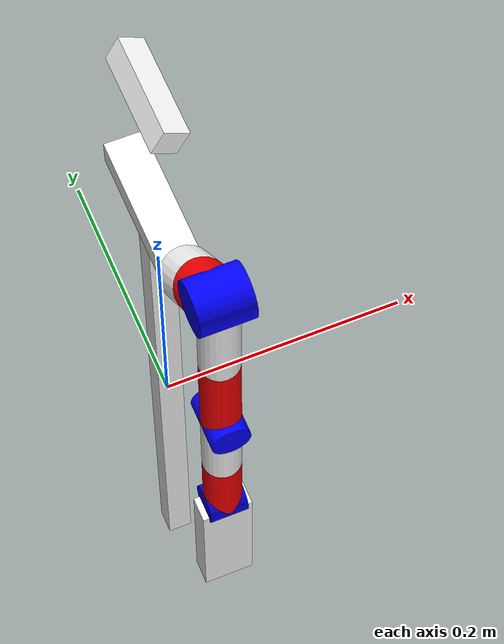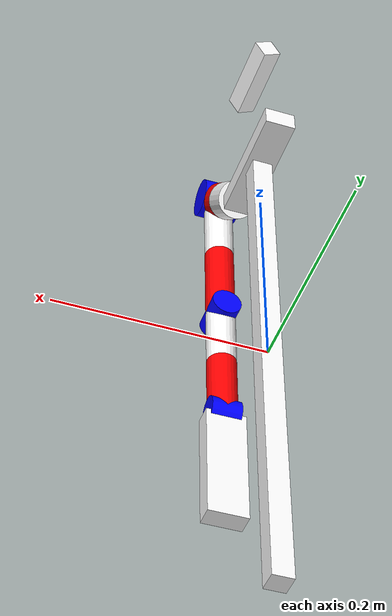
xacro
<?xml version="1.0"?>

<robot name="rx1" xmlns:xacro="http://ros.org/wiki/xacro">
    <xacro:property name="pi" value="3.1415" />
    <xacro:property name="motor_torque" value="50.0"/>
    <xacro:property name="motor_vec" value="15"/>

    <material name="red">
        <color rgba="1 0 0 1"/>
    </material>

    <material name="white">
        <color rgba="1 1 1 1"/>
    </material>

    <material name="blue">
        <color rgba="0 0 1 1"/>
    </material>

    <xacro:macro name="default_inertial" params="mass">
        <inertial>
            <mass value="${mass}" />
            <inertia ixx="1.0" ixy="0.0" ixz="0.0" iyy="1.0" iyz="0.0" izz="1.0" />
        </inertial>
    </xacro:macro>

    <link name="base_link">
        <inertial>
            <mass value="10.0" />
            <inertia ixx="0.1" ixy="0.0" ixz="0.0" iyy="0.04" iyz="0.0" izz="0.2" />
            <!--inertia ixx="1" ixy="0.0" ixz="0.0" iyy="1" iyz="0.0" izz="1" /-->
        </inertial>

        <visual>
            <geometry>
                <box size="0.02 0.02 0.5" />
            </geometry>
            <material name="white"/>
        </visual>
        <collision>
            <geometry>
                <box size="0.02 0.02 0.5" />
            </geometry>
        </collision>
    </link>

    <link name="camera_link">
        <inertial>
            <mass value="0.05" />
            <inertia ixx="4.16666667e-06" ixy="0.0" ixz="0.0" iyy="6.6666666667e-6" iyz="0.0" izz="04.16666667e-06" />
        </inertial>
        <visual>
            <geometry>
                <box size="0.02 0.08 0.02" />
            </geometry>
            <origin rpy="0 0 0" xyz="0 0 0"/>
            <material name="white"/>
        </visual>
        <collision>
            <geometry>
                <box size="0.03 0.12 0.02" />
            </geometry>
            <origin rpy="0 0 0" xyz="0 0 0"/>
        </collision>
    </link>
    <joint name="base2camera_joint" type="fixed">
        <origin xyz="0 0 0.40" rpy="0 0.5 0" />
        <parent link="base_link" />
        <child link="camera_link" />
    </joint>

    <link name="camera_color_optical_frame">
        <visual>
            <geometry>
                <box size="0.01 0.01 0.01" />
            </geometry>
            <origin rpy="0 0 0" xyz="0 0 0"/>
            <material name="white"/>
        </visual>
    </link>
    <joint name="camera2camera_joint" type="fixed">
        <origin xyz="0 0 0" rpy="-1.57 0 -1.57" />
        <parent link="camera_link" />
        <child link="camera_color_optical_frame" />
    </joint>

    <link name="torso_link">
        <inertial>
            <mass value="0.05" />
            <inertia ixx="4.16666667e-06" ixy="0.0" ixz="0.0" iyy="6.6666666667e-6" iyz="0.0" izz="04.16666667e-06" />
        </inertial>
        <visual>
            <geometry>
                <box size="0.03 0.12 0.02" />
            </geometry>
            <origin rpy="0 0 0" xyz="0 0 0"/>
            <material name="white"/>
        </visual>
        <collision>
            <geometry>
                <box size="0.03 0.12 0.02" />
            </geometry>
            <origin rpy="0 0 0" xyz="0 0 0"/>
        </collision>
    </link>
    <joint name="base2torso_joint" type="fixed">
        <origin xyz="0 0 0.26" rpy="0 0 0" />
        <parent link="base_link" />
        <child link="torso_link" />
    </joint>

    <link name="chest_link">
        <inertial>
            <mass value="0.05" />
            <inertia ixx="4.16666667e-06" ixy="0.0" ixz="0.0" iyy="6.6666666667e-6" iyz="0.0" izz="04.16666667e-06" />
        </inertial>

        <visual>
            <geometry>
                <cylinder length="0.04" radius="0.02" />
            </geometry>
            <origin rpy="0 0 0" xyz="0 0 0.02"/>
            <material name="white"/>
        </visual>
        <collision>
            <geometry>
                <cylinder length="0.04" radius="0.02" />
            </geometry>
            <origin rpy="0 0 0" xyz="0 0 0.02"/>
        </collision>
    </link>
    <joint name="torso2chest_joint" type="fixed">
        <origin xyz="0 -0.06 0.01" rpy="${0.25*pi} 0 0" />
        <parent link="torso_link" />
        <child link="chest_link" />
    </joint>

    <link name="shoul_link">
        <visual>
            <geometry>
                <cylinder length="0.04" radius="0.02" />
            </geometry>
            <origin rpy="0 0 0" xyz="0 0 0.02"/>
            <material name="red"/>
        </visual>
        <collision>
            <geometry>
                <cylinder length="0.04" radius="0.02" />
            </geometry>
            <origin rpy="0 0 0" xyz="0 0 0.02"/>
        </collision>
    </link>
    <joint name="chest2shoul_joint" type="revolute">
        <axis xyz="0 0 1" />
        <limit effort="${motor_torque}" lower="${-0.5*pi}" upper="${0.5*pi}" velocity="${motor_vec}"/>
        <origin xyz="0 0 0.04" rpy="0 0 0" />
        <parent link="chest_link" />
        <child link="shoul_link" />
    </joint>

    <link name="shoulrot_link">
        <visual>
            <geometry>
                <cylinder length="0.04" radius="0.02" />
            </geometry>
            <origin rpy="0 ${0.5*pi} 0" xyz="0 0 0"/>
            <material name="blue"/>
        </visual>
        <collision>
            <geometry>
                <cylinder length="0.04" radius="0.02" />
            </geometry>
            <origin rpy="0 ${0.5*pi} 0" xyz="0 0 0"/>
        </collision>
    </link>
    <joint name="shoul2shoulrot_joint" type="revolute">
        <axis xyz="1 0 0" />
        <limit effort="${motor_torque}" lower="${-0.5*pi}" upper="${0.5*pi}" velocity="${motor_vec}"/>
        <origin xyz="0 0 0.04" rpy="${-0.25*pi} 0 0" />
        <parent link="shoul_link" />
        <child link="shoulrot_link" />
    </joint>

    <link name="arm_link">
        <visual>
            <geometry>
                <cylinder length="0.085" radius="0.015" />
            </geometry>
            <origin rpy="0 0 0" xyz="0 0 0"/>
            <material name="white"/>
        </visual>
        <collision>
            <geometry>
                <cylinder length="0.085" radius="0.015" />
            </geometry>
            <origin rpy="0 0 0" xyz="0 0 0"/>
        </collision>
    </link>
    <joint name="shoulrot2arm_joint" type="fixed">
        <origin xyz="0 0 -0.0425" rpy="0 0 0" />
        <parent link="shoulrot_link" />
        <child link="arm_link" />
    </joint>

    <link name="armrot_link">
        <visual>
            <geometry>
                <cylinder length="0.085" radius="0.015" />
            </geometry>
            <origin rpy="0 0 0" xyz="0 0 -0.0425"/>
            <material name="red"/>
        </visual>
        <collision>
            <geometry>
                <cylinder length="0.085" radius="0.015" />
            </geometry>
            <origin rpy="0 0 0" xyz="0 0 -0.0425"/>
        </collision>
    </link>
    <joint name="arm2armrot_joint" type="revolute">
        <axis xyz="0 0 1" />
        <limit effort="${motor_torque}" lower="${-0.5*pi}" upper="${0.5*pi}" velocity="${motor_vec}"/>
        <origin xyz="0 0 -0.0425" rpy="0 0 0" />
        <parent link="arm_link" />
        <child link="armrot_link" />
    </joint>

    <link name="elbow_link">
        <visual>
            <geometry>
                <cylinder length="0.04" radius="0.015" />
            </geometry>
            <origin rpy="0 ${0.5*pi} -${0.5*pi}" xyz="0 0 0"/>
            <material name="blue"/>
        </visual>
        <collision>
            <geometry>
                <cylinder length="0.085" radius="0.015" />
            </geometry>
            <origin rpy="0 ${0.5*pi} -${0.5*pi}" xyz="0 0 0"/>
        </collision>
    </link>
    <joint name="armrot2elbow_joint" type="revolute">
        <axis xyz="0 1 0" />
        <limit effort="${motor_torque}" lower="${-0.5*pi}" upper="${0.5*pi}" velocity="${motor_vec}"/>
        <origin xyz="0 0 -0.085" rpy="0 0 0" />
        <parent link="armrot_link" />
        <child link="elbow_link" />
    </joint>

     <link name="forearm_link">
        <visual>
            <geometry>
                <cylinder length="0.066" radius="0.015" />
            </geometry>
            <origin rpy="0 0 0" xyz="0 0 0"/>
            <material name="white"/>
        </visual>
        <collision>
            <geometry>
                <cylinder length="0.066" radius="0.015" />
            </geometry>
            <origin rpy="0 0 0" xyz="0 0 0"/>
        </collision>
    </link>
    <joint name="elbow2forearm_joint" type="fixed">
        <origin xyz="0 0 -0.033" rpy="0 0 0" />
        <parent link="elbow_link" />
        <child link="forearm_link" />
    </joint>

    <link name="forearmrot_link">
        <visual>
            <geometry>
                <cylinder length="0.066" radius="0.015" />
            </geometry>
            <origin rpy="0 0 0" xyz="0 0 -0.033"/>
            <material name="red"/>
        </visual>
        <collision>
            <geometry>
                <cylinder length="0.066" radius="0.015" />
            </geometry>
            <origin rpy="0 0 0" xyz="0 0 -0.033"/>
        </collision>
    </link>
    <joint name="forearm2forearmrot_joint" type="revolute">
        <axis xyz="0 0 1" />
        <limit effort="${motor_torque}" lower="${-0.5*pi}" upper="${0.5*pi}" velocity="${motor_vec}"/>
        <origin xyz="0 0 -0.033" rpy="0 0 0" />
        <parent link="forearm_link" />
        <child link="forearmrot_link" />
    </joint>

    <link name="wrist_link">
        <visual>
            <geometry>
                <cylinder length="0.03" radius="0.015" />
            </geometry>
            <origin rpy="0 ${0.5*pi} 0" xyz="0 0 0"/>
            <material name="blue"/>
        </visual>
        <collision>
            <geometry>
                <cylinder length="0.03" radius="0.01" />
            </geometry>
            <origin rpy="0 ${0.5*pi} 0" xyz="0 0 0"/>
        </collision>
    </link>
    <joint name="forearmrot2wrist_joint" type="revolute">
        <axis xyz="1 0 0" />
        <limit effort="${motor_torque}" lower="${-0.5*pi}" upper="${0.5*pi}" velocity="${motor_vec}"/>
        <origin xyz="0 0 -0.066" rpy="0 0 0" />
        <parent link="forearmrot_link" />
        <child link="wrist_link" />
    </joint>

    <link name="hand_link">
        <visual>
            <geometry>
                <box size="0.04 0.02 0.12" />
            </geometry>
            <origin rpy="0 0 0" xyz="0 0 0"/>
            <material name="white"/>
        </visual>
        <collision>
            <geometry>
                <box size="0.04 0.02 0.12" />
            </geometry>
            <origin rpy="0 0 0" xyz="0 0 0"/>
        </collision>
    </link>
    <joint name="wrist2hand_joint" type="fixed">
        <origin xyz="0 0 -0.066" rpy="0 0 0" />
        <parent link="wrist_link" />
        <child link="hand_link" />
    </joint>

</robot>
